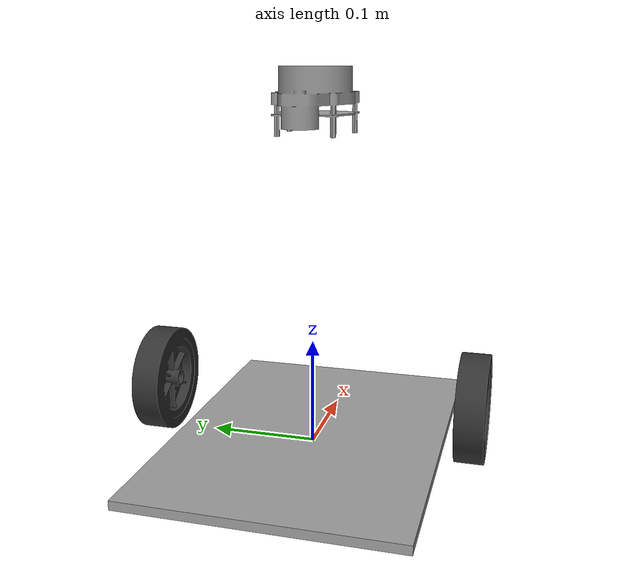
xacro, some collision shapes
<?xml version="1.0" ?>
<robot name="cleaning_robot" xmlns:xacro="http://www.ros.org/wiki/xacro">

<xacro:include filename="$(find cleaning_robot_description)/urdf/materials.xacro" />
<xacro:include filename="$(find cleaning_robot_description)/urdf/cleaning_robot.trans" />
<xacro:include filename="$(find cleaning_robot_description)/urdf/cleaning_robot.gazebo" />
<link name="base_link">
  <inertial>
    <origin xyz="0.0017954772285289646 -0.000557274001101866 0.10557528717752657" rpy="0 0 0"/>
    <mass value="8.848545144554517"/>
    <inertia ixx="0.114087" iyy="0.120961" izz="0.134988" ixy="-0.003548" iyz="0.004215" ixz="0.006819"/>
  </inertial>
  <visual>
    <origin xyz="0 0 0" rpy="0 0 0"/>
    <geometry>
      <mesh filename="package://cleaning_robot_description/meshes/base_link.stl" scale="0.001 0.001 0.001"/>
    </geometry>
    <material name="steel_satin"/>
  </visual>
  <collision>
    <origin xyz="0.0 0 0.005" rpy="0 0 0"/>
    <geometry>
      <box size="0.35 0.25 0.0085" />
    </geometry>
  </collision>
</link>

<link name="right_wheel_1">
  <inertial>
    <origin xyz="-1.9475303414941916e-15 -0.007842031913982417 1.2323475573339238e-14" rpy="0 0 0"/>
    <mass value="1.0207980214073957"/>
    <inertia ixx="0.000884" iyy="0.00167" izz="0.000884" ixy="-0.0" iyz="-0.0" ixz="-0.0"/>
  </inertial>
  <visual>
    <origin xyz="-0.0 0.144 -0.05" rpy="0 0 0"/>
    <geometry>
      <mesh filename="package://cleaning_robot_description/meshes/right_wheel_1.stl" scale="0.001 0.001 0.001"/>
    </geometry>
    <material name="abs_white"/>
  </visual>
  <collision>
    <origin xyz="-0.0 0.144 -0.05" rpy="0 0 0"/>
    <geometry>
      <mesh filename="package://cleaning_robot_description/meshes/right_wheel_1.stl" scale="0.001 0.001 0.001"/>
    </geometry>
  </collision>
</link>

<link name="left_wheel_1">
  <inertial>
    <origin xyz="2.5866925465521704e-15 0.007842031913982556 1.2288781103819701e-14" rpy="0 0 0"/>
    <mass value="1.0207980214073957"/>
    <inertia ixx="0.000884" iyy="0.00167" izz="0.000884" ixy="0.0" iyz="0.0" ixz="0.0"/>
  </inertial>
  <visual>
    <origin xyz="0.0 -0.144 -0.05" rpy="0 0 0"/>
    <geometry>
      <mesh filename="package://cleaning_robot_description/meshes/left_wheel_1.stl" scale="0.001 0.001 0.001"/>
    </geometry>
    <material name="abs_white"/>
  </visual>
  <collision>
    <origin xyz="0.0 -0.144 -0.05" rpy="0 0 0"/>
    <geometry>
      <mesh filename="package://cleaning_robot_description/meshes/left_wheel_1.stl" scale="0.001 0.001 0.001"/>
    </geometry>
  </collision>
</link>

<link name="ydlidar_1">
  <inertial>
    <origin xyz="0.026706155403509572 0.025000237545982823 0.037701142222791084" rpy="0 0 0"/>
    <mass value="1.1515616542314233"/>
    <inertia ixx="0.000489" iyy="0.000861" izz="0.000987" ixy="-0.0" iyz="-0.0" ixz="-0.000148"/>
  </inertial>
  <visual>
    <origin xyz="0.0 0.0 -0.335" rpy="0 0 3.1416"/>
    <geometry>
      <mesh filename="package://cleaning_robot_description/meshes/ydlidar_1.stl" scale="0.001 0.001 0.001"/>
    </geometry>
    <material name="steel_satin"/>
  </visual>
  <collision>
    <origin xyz="0.0 0.0 -0.335" rpy="0 0 3.1416"/>
    <geometry>
      <mesh filename="package://cleaning_robot_description/meshes/ydlidar_1.stl" scale="0.001 0.001 0.001"/>
    </geometry>
  </collision>
</link>

<joint name="base2right" type="continuous">
  <origin xyz="0.0 -0.144 0.05" rpy="0 0 0"/>
  <parent link="base_link"/>
  <child link="right_wheel_1"/>
  <axis xyz="-0.0 1.0 0.0"/>
</joint>

<joint name="base2left" type="continuous">
  <origin xyz="0.0 0.144 0.05" rpy="0 0 0"/>
  <parent link="base_link"/>
  <child link="left_wheel_1"/>
  <axis xyz="0.0 1.0 0.0"/>
</joint>

<joint name="base2lidar" type="fixed">
  <origin xyz="-0.0 -0.0 0.335" rpy="0 0 3.1416"/>
  <parent link="base_link"/>
  <child link="ydlidar_1"/>
</joint>

</robot>

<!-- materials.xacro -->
<robot name="cleaning_robot" xmlns:xacro="http://www.ros.org/wiki/xacro" >

<material name="silver_default">
  <color rgba="0.700 0.700 0.700 1.000"/>
</material>
<material name="steel_satin">
  <color rgba="0.6274509803921569 0.6274509803921569 0.6274509803921569 1.0"/>
</material>
<material name="abs_white">
  <color rgba="0.2 0.2 0.2 1.0"/>
</material>

</robot>

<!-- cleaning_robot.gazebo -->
<robot name="cleaning_robot" xmlns:xacro="http://www.ros.org/wiki/xacro">

  <xacro:property name="body_color" value="Gazebo/Silver" />

  <gazebo>
    <plugin name="control" filename="libgazebo_ros_control.so" />
  </gazebo>
  <gazebo reference="base_link">
    <material>${body_color}</material>
    <mu1>0.2</mu1>
    <mu2>0.2</mu2>
    <selfCollide>true</selfCollide>
    <gravity>true</gravity>
  </gazebo>

  <gazebo reference="right_wheel_1">
    <material>${body_color}</material>
    <mu1>1000</mu1>
    <mu2>1000</mu2>
    <selfCollide>true</selfCollide>
  </gazebo>

  <gazebo reference="left_wheel_1">
    <material>${body_color}</material>
    <mu1>1000</mu1>
    <mu2>1000</mu2>
    <selfCollide>true</selfCollide>
  </gazebo>

  <gazebo reference="ydlidar_1">
    <material>${body_color}</material>
    <mu1>0.2</mu1>
    <mu2>0.2</mu2>
    <selfCollide>true</selfCollide>
  </gazebo>

  <gazebo>
    <plugin name="differential_drive_controller" filename="libgazebo_ros_diff_drive.so">

      <!-- Plugin update rate in Hz -->
      <updateRate>50</updateRate>

      <!-- Name of left joint, defaults to `left_joint` -->
      <leftJoint>base2left</leftJoint>

      <!-- Name of right joint, defaults to `right_joint` -->
      <rightJoint>base2right</rightJoint>

      <!-- Wheel acceleration, in rad/s^2, defaults to 0.0 rad/s^2 -->
      <wheelAcceleration>1.0</wheelAcceleration>

      <!-- Maximum torque which the wheels can produce, in Nm, defaults to 5 Nm -->
      <wheelTorque>20</wheelTorque>

      <!-- Topic to receive geometry_msgs/Twist message commands, defaults to `cmd_vel` -->
      <commandTopic>cmd_vel</commandTopic>

      <!-- Topic to publish nav_msgs/Odometry messages, defaults to `odom` -->
      <odometryTopic>odom</odometryTopic>

      <!-- Odometry frame, defaults to `odom` -->
      <odometryFrame>odom</odometryFrame>

      <!-- Robot frame to calculate odometry from, defaults to `base_footprint` -->
      <robotBaseFrame>base_link</robotBaseFrame>

      <!-- Odometry source, 0 for ENCODER, 1 for WORLD, defaults to WORLD -->
      <odometrySource>1</odometrySource>

      <!-- Set to true to publish transforms for the wheel links, defaults to false -->
      <publishWheelTF>true</publishWheelTF>

      <!-- Set to true to publish transforms for the odometry, defaults to true -->
      <publishOdom>true</publishOdom>

      <!-- Set to true to publish sensor_msgs/JointState on /joint_states for the wheel joints,
      defaults to false -->
      <publishWheelJointState>false</publishWheelJointState>

      <!-- Set to true to swap right and left wheels, defaults to true -->
      <legacyMode>false</legacyMode>
    </plugin>
  </gazebo>

  <!-- hokuyo -->
  <gazebo reference="ydlidar_1">
    <sensor type="ray" name="head_hokuyo_sensor">
      <pose>0 0 0 0 0 0</pose>
      <visualize>false</visualize>
      <update_rate>40</update_rate>
      <ray>
        <scan>
          <horizontal>
            <samples>720</samples>
            <resolution>1</resolution>
            <min_angle>-3.14159</min_angle>
            <max_angle>3.14159</max_angle>
          </horizontal>
        </scan>
        <range>
          <min>0.10</min>
          <max>30.0</max>
          <resolution>0.01</resolution>
        </range>
        <noise>
          <type>gaussian</type>
          <mean>0.0</mean>
          <stddev>0.01</stddev>
        </noise>
      </ray>
      <plugin name="gazebo_ros_head_hokuyo_controller" filename="libgazebo_ros_laser.so">
        <topicName>/scan</topicName>
        <frameName>ydlidar_1</frameName>
      </plugin>
    </sensor>
  </gazebo>
</robot>
